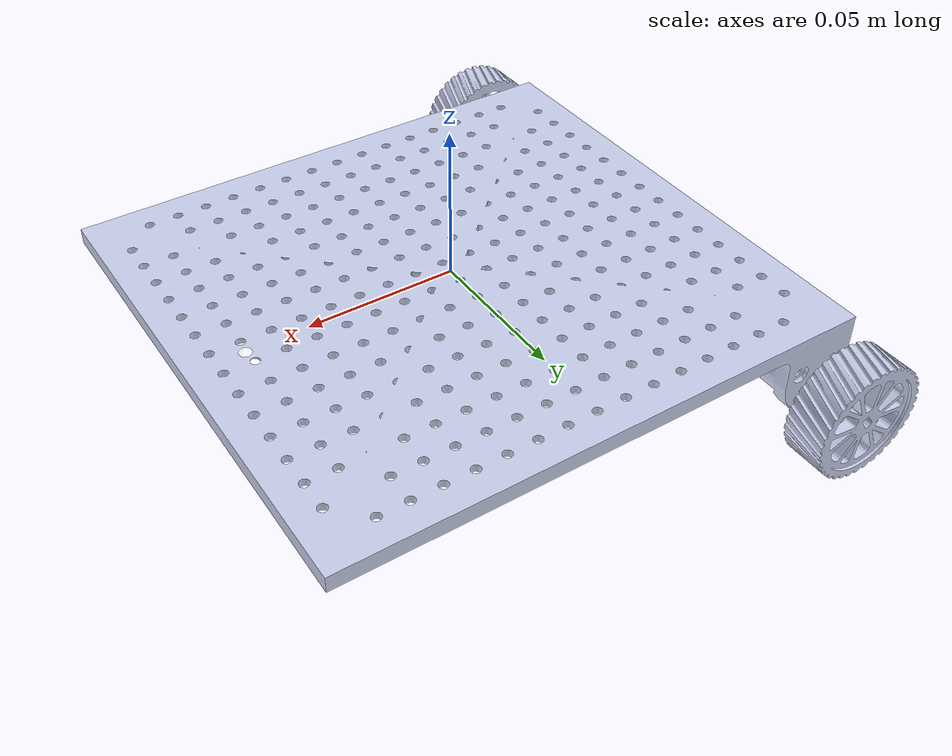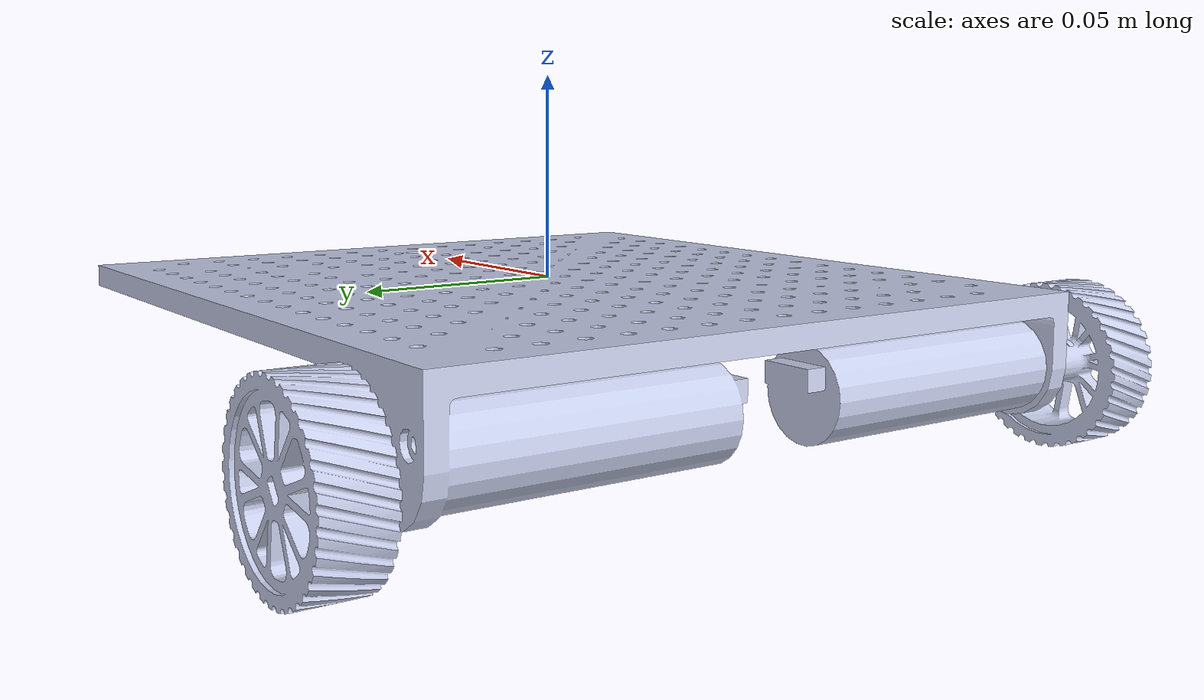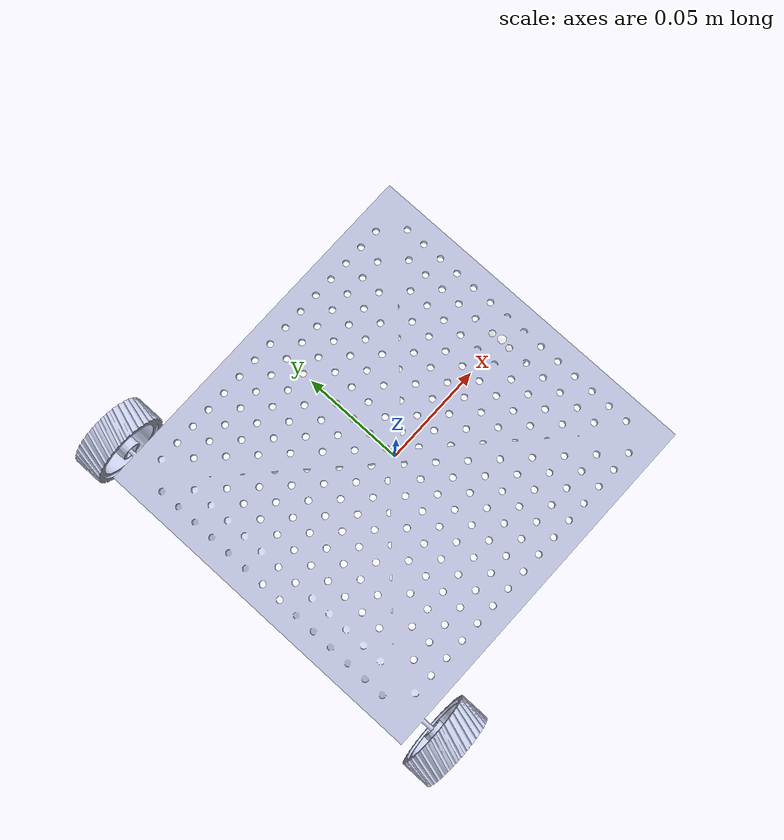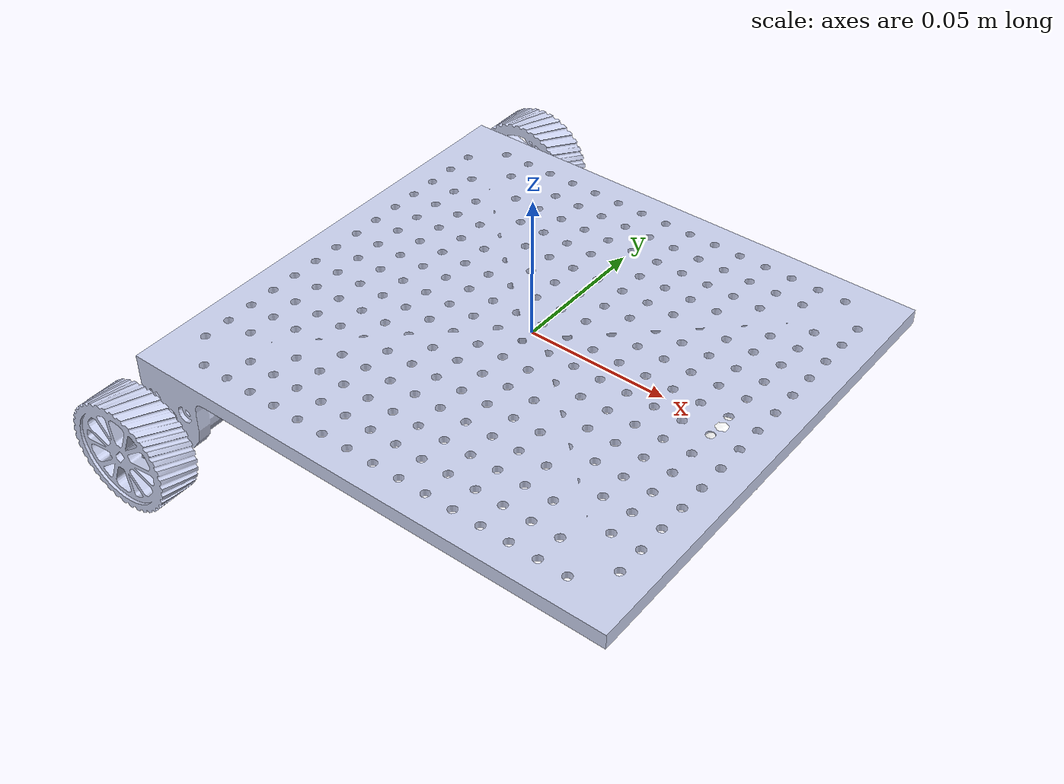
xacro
<?xml version="1.0"?>

<robot name="differential_drive_robot" xmlns:xacro="http://www.ros.org/wiki/xacro">

    <!-- Robot Parameters -->
    <xacro:property name="PI" value="3.14159265"/>
    <xacro:property name="body_length" value="0.18"/>
    <xacro:property name="body_width" value="0.17"/>
    <xacro:property name="body_height" value="0.01"/>
    <xacro:property name="body_density" value="7850.0"/> <!-- Steel -->
    <xacro:property name="body_mass" value="${body_density * body_length * body_height * body_width}"/>
    <xacro:property name="body_inertia_x" value="${1.0/12.0 * body_mass * (body_height*body_height + body_width*body_width)}"/>
    <xacro:property name="body_inertia_y" value="${1.0/12.0 * body_mass * (body_length*body_length + body_height*body_height)}"/>
    <xacro:property name="body_inertia_z" value="${1.0/12.0 * body_mass * (body_length*body_length + body_width*body_width)}"/>

    <xacro:property name="wheel_radius" value="0.04"/>
    <xacro:property name="wheel_width" value="0.015"/>
    <xacro:property name="wheel_separation" value="${body_width + wheel_width}"/>
    <xacro:property name="wheel_offset" value="${body_length/2 - wheel_radius}"/>
    <xacro:property name="wheel_density" value="900"/> <!-- Ruber -->
    <xacro:property name="wheel_mass" value="${wheel_density * PI * wheel_radius * wheel_radius * wheel_width}"/>
    <xacro:property name="wheel_inertia_x" value="${1.0/12.0 * wheel_mass * (3*wheel_radius*wheel_radius + wheel_width*wheel_width)}"/>
    <xacro:property name="wheel_inertia_y" value="${1.0/12.0 * wheel_mass * (3*wheel_radius*wheel_radius + wheel_width*wheel_width)}"/>
    <xacro:property name="wheel_inertia_z" value="${1.0/2.0 * wheel_mass * wheel_radius * wheel_radius}"/>

    <xacro:property name="caster_radius" value="0.0125"/>
    <xacro:property name="caster_offset" value="${body_length/2 - caster_radius}"/>
    <xacro:property name="caster_density" value="0.1"/>
    <xacro:property name="caster_mass" value="${caster_density * 4.0/3.0 * PI * caster_radius * caster_radius * caster_radius}"/>
    <xacro:property name="caster_inertia_x" value="${2.0/5.0 * caster_mass * caster_radius * caster_radius}"/>
    <xacro:property name="caster_inertia_y" value="${2.0/5.0 * caster_mass * caster_radius * caster_radius}"/>
    <xacro:property name="caster_inertia_z" value="${2.0/5.0 * caster_mass * caster_radius * caster_radius}"/>

    <!-- Control Parameters -->
    <xacro:property name="max_linear_acceleration" value="10"/>

    <!-- Links -->

    <!-- Body Link -->
    <link name="body_link">
        <inertial>
        <origin
            xyz="-0.0284 0 -0.008"
            rpy="0 0 0" />
        <mass
            value="0.300" />
        <inertia
            ixx="0.000290930982603083"
            ixy="2.96592562996834E-10"
            ixz="-4.89953593135407E-06"
            iyy="0.000293366944607641"
            iyz="-1.24079970534305E-11"
            izz="0.000578469246893076" />
        </inertial>
        <visual>
            <origin
                xyz="0 0 0"
                rpy="0 0 0" />
            <geometry>
                <mesh
                filename="package://gazebo_differential_drive_robot/meshes/base_link.STL" />
            </geometry>
            <material
                name="">
                <color
                rgba="0.792156862745098 0.819607843137255 0.933333333333333 1" />
            </material>
        </visual>
        <collision>
            <origin
                xyz="0 0 0"
                rpy="0 0 0" />
            <geometry>
                <box size="0.18 0.17 0.03" />
            </geometry>
        </collision>
    </link>

    <!-- Left Wheel -->
    <link name="left_wheel_link">
        <inertial>
        <origin
            xyz="0 0 0.00808"
            rpy="0 0 0" />
        <mass
            value="0.015" />
        <inertia
            ixx="1.23422492282635E-06"
            ixy="-1.48859597124639E-10"
            ixz="3.30647721519471E-16"
            iyy="1.23431714543936E-06"
            iyz="-6.17403432705978E-16"
            izz="2.19640206701058E-06" />
        </inertial>
        <visual>
        <origin
            xyz="0 0 0"
            rpy="0 0 0" />
        <geometry>
            <mesh
            filename="package://gazebo_differential_drive_robot/meshes/left_wheel_link.STL" />
        </geometry>
        <material
            name="">
            <color
            rgba="0.792156862745098 0.819607843137255 0.933333333333333 1" />
        </material>
        </visual>
        <collision>
            <origin
                xyz="0 0 0"
                rpy="0 0 0" />
            <geometry>
                <cylinder radius="0.02" length="0.015"/>
            </geometry>
        </collision>
    </link>

    <!-- Right Wheel -->
    <link name="right_wheel_link">
        <inertial>
        <origin
            xyz="0 0 0.00808"
            rpy="0 0 0" />
        <mass
            value="0.015" />
        <inertia
            ixx="1.23422492920575E-06"
            ixy="1.48861577857816E-10"
            ixz="4.91594534149496E-16"
            iyy="1.23431713905996E-06"
            iyz="4.98850564443408E-16"
            izz="2.19640206701057E-06" />
        </inertial>
        <visual>
        <origin
            xyz="0 0 0"
            rpy="0 0 0" />
        <geometry>
            <mesh
            filename="package://gazebo_differential_drive_robot/meshes/right_wheel_link.STL" />
        </geometry>
        <material
            name="">
            <color
            rgba="0.792156862745098 0.819607843137255 0.933333333333333 1" />
        </material>
        </visual>
        <collision>
        <origin
            xyz="0 0 0"
            rpy="0 0 0" />
        <geometry>
            <cylinder radius="0.02" length="0.015"/>
        </geometry>
        </collision>
    </link>

    <!-- Caster Wheel -->
    <link name="caster_link">
        <inertial>
            <origin
                xyz="0.0 0 0.0"
                rpy="-1.5707963267949 0 0" />
            <mass
                value="0.0669259238391975" />
            <inertia
                ixx="4.31779290240967E-06"
                ixy="3.54080995565633E-23"
                ixz="-7.16933357795495E-22"
                iyy="4.31779290240967E-06"
                iyz="6.61721086913841E-23"
                izz="4.31779290240967E-06" />
        </inertial>
        <visual>
            <origin
                xyz="0 0 0"
                rpy="0 0 0" />
            <geometry>
                <mesh
                filename="package://gazebo_differential_drive_robot/meshes/castor_wheel_xz_link.STL" />
            </geometry>
            <material
                name="">
                <color
                rgba="1 1 1 1" />
            </material>
        </visual>
        <collision>
            <origin
                xyz="0.0 0 -0.0"
                rpy="0 0 0" />
            <geometry>
                <sphere radius=".0125" />
            </geometry>
        </collision>
    </link>

    <!-- Joints -->

    <!-- Left Wheel Joint -->
    <joint name="left_wheel_joint" type="continuous">
        <origin
            xyz="-0.0775 0.0925 -0.02"
            rpy="-1.5707963267949 0 0" />
        <parent
            link="body_link" />
        <child
            link="left_wheel_link" />
        <axis
            xyz="0 0 1" />
        <limit
            effort="3"
            velocity="5" />
        <dynamics
            friction="0.1" />
    </joint>

    <!-- Right Wheel Joint -->
    <joint name="right_wheel_joint" type="continuous">
        <origin
            xyz="-0.0775 -0.0925 -0.02"
            rpy="-1.5707963267949 0 -3.1415926535898" />
        <parent
            link="body_link" />
        <child
            link="right_wheel_link" />
        <axis
            xyz="0 0 -1" />
        <limit
            effort="3"
            velocity="5" />
        <dynamics
            friction="0.1" />
    </joint>

    <!-- Caster Wheel Joint (fixed) -->
    <joint name="caster_joint" type="fixed">
        <origin
            xyz="0.07075 0 -0.0125"
            rpy="-1.5707963267949 0 0" />
        <parent link="body_link"/>
        <child link="caster_link"/>
    </joint>

    <!-- Gazebo Parameters -->
    <gazebo reference="body_link">
        <mu1>1.0</mu1>
        <mu2>1.0</mu2>
    </gazebo>

    <gazebo reference="right_wheel_link">
        <mu1>1.0</mu1>
        <mu2>1.0</mu2>
    </gazebo>

    <gazebo reference="left_wheel_link">
        <mu1>1.0</mu1>
        <mu2>1.0</mu2>
    </gazebo>

    <gazebo reference="caster_link">
        <mu1>0.000001</mu1>
        <mu2>0.000001</mu2>
    </gazebo>

    <!-- Gazebo Plugins -->
    <gazebo>
        <plugin filename="gz-sim-diff-drive-system" name="gz::sim::systems::DiffDrive">
            <right_joint>right_wheel_joint</right_joint>
            <left_joint>left_wheel_joint</left_joint>
            <wheel_separation>${wheel_separation}</wheel_separation>
            <wheel_radius>${wheel_radius}</wheel_radius>
            <max_linear_acceleration>${max_linear_acceleration}</max_linear_acceleration>
            <odom_publish_frequency>100</odom_publish_frequency>
            <topic>cmd_vel</topic>
            <odom_topic>odom</odom_topic>
        </plugin>

        <plugin filename="gz-sim-joint-state-publisher-system" name="gz::sim::systems::JointStatePublisher">
            <topic>joint_states</topic>
            <joint_name>right_wheel_joint</joint_name>
            <joint_name>left_wheel_joint</joint_name>
        </plugin>
    </gazebo>

</robot>
